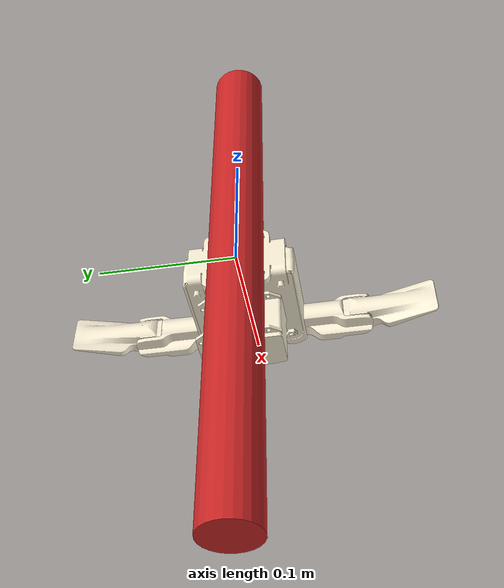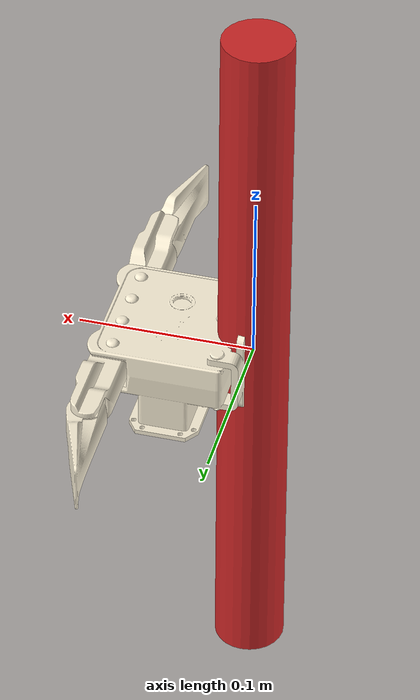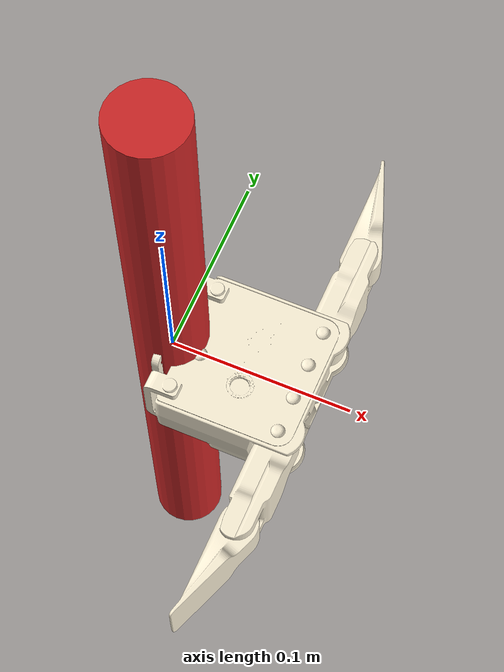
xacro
<?xml version="1.0" encoding="UTF-8"?>
<robot name="ezgripper_stand_alone" xmlns:xacro="http://www.ros.org/wiki/xacro">

<property name="ezgripper_offset_x" value="0.0"/>
<property name="ezgripper_offset_y" value="0.0"/>
<property name="ezgripper_offset_z" value="0.0"/>

<xacro:include filename="$(find ezgripper_driver)/urdf/ezgripper_dual_gen2_articulated.urdf.xacro"/>
<!-- Add the gripper -->
<ezgripper_dual prefix="left" parent_link="base_link">
<origin xyz="${ezgripper_offset_x} ${ezgripper_offset_y} ${ezgripper_offset_z}" rpy="0 0 0"/>
</ezgripper_dual>

<link name="world"/>
<joint name="fixed" type="fixed">
  <parent link="world"/>
  <child link="base_link"/>
</joint>
<link name="base_link">
   <visual>
       <geometry>
           <cylinder length="0.42" radius="0.02"/>
        </geometry>
        <origin rpy="0 0 0" xyz="0 0 0.0"/>
        <material name="red"/>
    </visual>
</link>

</robot>

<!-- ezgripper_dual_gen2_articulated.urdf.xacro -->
<robot name="ezgripper" xmlns:xacro="http://ros.org/wiki/xacro">

<!--xacro:macro name="ezgripper" params="*origin"-->

<xacro:macro name="ezgripper_dual" params="prefix parent_link *origin">

    <material name="blue_pastel">
      <color rgba="0.482 0.8 0.894 0.85"/>
    </material>

    <material name="white_clean">
      <color rgba="0.98 0.94 0.84 1."/>
    </material>

    <!-- links -->

    <link name="${prefix}_ezgripper_palm_link">
      <visual>
        <origin xyz="0 0 0" rpy="0 0 0"/>
        <geometry>
          <mesh filename="package://ezgripper_driver/meshes/ezgripper_gen2/SAKE_Palm_Dual_Gen2.stl"/>
        </geometry>
        <material name="white_clean"/>
      </visual>
      <collision>
        <origin xyz="0 0 0" rpy="0 0 0"/>
        <geometry>
          <mesh filename="package://ezgripper_driver/meshes/ezgripper_gen2/SAKE_Palm_Dual_Gen2.stl"/>
        </geometry>
      </collision>
    <inertial>
      <mass value=".3"/>
      <inertia ixx="0.01" ixy="0.0" ixz="0.0" iyy="0.01" iyz="0.0" izz="0.01"/>
    </inertial>
    </link>

    <joint name="${prefix}_ezgripper_connect" type="fixed">
        <xacro:insert_block name="origin" />
        <parent link="${parent_link}"/>
        <child link="${prefix}_ezgripper_palm_link"/>
        <axis xyz="0 0 0"/>
        <limit effort="0" lower="-1.57075" upper="0.25" velocity="3.67"/>
    </joint>

    <ezgripper_finger_L1 prefix="${prefix}" postfix="1" reflect="1" />
    <ezgripper_finger_L1 prefix="${prefix}" postfix="2" reflect="1" />

    <ezgripper_finger_L2 prefix="${prefix}" postfix="1" reflect="1" />
    <ezgripper_finger_L2 prefix="${prefix}" postfix="2" reflect="1" />

    <ezgripper_knuckle_palm_L1 prefix="${prefix}" postfix="1" reflectY="1" reflectZ="1" reflectR="1" mimic_test="false"/>
    <ezgripper_knuckle_palm_L1 prefix="${prefix}" postfix="2" reflectY="-1" reflectZ="1" reflectR="-1" mimic_test="true"/>

    <ezgripper_knuckle_L1_L2 prefix="${prefix}" postfix="1" reflectY="1" reflectZ="1" reflectR="-1" mimic_test="false"/>
    <ezgripper_knuckle_L1_L2 prefix="${prefix}" postfix="2" reflectY="-1" reflectZ="1" reflectR="1" mimic_test="true"/>

    <ezgripper_knuckle_trans prefix="${prefix}" postfix="L1_L2_1"/>

    <gazebo_knuckle_jsp prefix="${prefix}" />

</xacro:macro>

<xacro:macro name="ezgripper_finger_L1" params="prefix postfix reflect">
    <link name="${prefix}_ezgripper_finger_L1_${postfix}">
      <visual>
        <origin xyz="0 0 0" rpy="0 0 0"/>
        <geometry>
          <mesh filename="package://ezgripper_driver/meshes/ezgripper_gen2/SAKE_Finger_L1_Gen2.stl"/>
        </geometry>
        <material name="white_clean"/>
      </visual>
      <collision>
        <origin xyz="0 0 0" rpy="0 0 0"/>
        <geometry>
          <mesh filename="package://ezgripper_driver/meshes/ezgripper_gen2/SAKE_Finger_L1_Gen2.stl"/>
        </geometry>
      </collision>
      <inertial>
        <mass value=".025"/>
        <inertia ixx="0.01" ixy="0.0" ixz="0.0" iyy="0.01" iyz="0.0" izz="0.01"/>
      </inertial>
    </link>
</xacro:macro>

<xacro:macro name="ezgripper_finger_L2" params="prefix postfix reflect">
    <link name="${prefix}_ezgripper_finger_L2_${postfix}">
      <visual>
        <origin xyz="0 0 0" rpy="0 0 0"/>
        <geometry>
          <mesh filename="package://ezgripper_driver/meshes/ezgripper_gen2/SAKE_Finger_L2_Gen2.stl"/>
        </geometry>
        <material name="white_clean"/>
      </visual>
      <collision>
        <origin xyz="0 0 0" rpy="0 0 0"/>
        <geometry>
          <mesh filename="package://ezgripper_driver/meshes/ezgripper_gen2/SAKE_Finger_L2_Gen2.stl"/>
        </geometry>
      </collision>
      <inertial>
        <mass value=".025"/>
        <inertia ixx="0.01" ixy="0.0" ixz="0.0" iyy="0.01" iyz="0.0" izz="0.01"/>
      </inertial>
    </link>
</xacro:macro>

    <!-- joints -->

<xacro:macro name="ezgripper_knuckle_palm_L1" params="prefix postfix reflectY reflectZ reflectR mimic_test">
    <joint name="${prefix}_ezgripper_knuckle_palm_L1_${postfix}" type="revolute">
      <parent link="${prefix}_ezgripper_palm_link"/>
      <child link="${prefix}_ezgripper_finger_L1_${postfix}"/>
      <origin xyz="0.072569 ${reflectY*0.03} 0" rpy="${-1.5708 * reflectR} 0 ${1.57075 * reflectR}"/>
      <axis xyz="0 1 0"/>
      <limit lower="0" upper="1.94" effort="1" velocity="3.67"/>
      <xacro:if value="${mimic_test}">
           <mimic joint="${prefix}_ezgripper_knuckle_palm_L1_1"/>
      </xacro:if>
    </joint>
</xacro:macro>

<xacro:macro name="ezgripper_knuckle_L1_L2" params="prefix postfix reflectY reflectZ reflectR mimic_test">
    <joint name="${prefix}_ezgripper_knuckle_L1_L2_${postfix}" type="revolute">
      <parent link="${prefix}_ezgripper_finger_L1_${postfix}"/>
      <child link="${prefix}_ezgripper_finger_L2_${postfix}"/>
      <origin xyz="0.052 0 0" rpy="0 0 0"/>
      <!-- origin xyz="0.06 0 0" rpy="${3.14159 * reflectR} 0 0"/-->
      <axis xyz="0 1 0"/>
      <limit lower="0" upper="1.94" effort="1" velocity="3.67"/>
      <xacro:if value="${mimic_test}">
           <mimic joint="${prefix}_ezgripper_knuckle_L1_L2_1"/>
      </xacro:if>
    </joint>
</xacro:macro>

    <!-- transmissions for Gazebo -->

<xacro:macro name="ezgripper_knuckle_trans" params="prefix postfix">
   <transmission name="${prefix}_ezgripper_trans_${postfix}">
      <type>transmission_interface/SimpleTransmission</type>
      <joint name="${prefix}_ezgripper_knuckle_${postfix}">
         <hardwareInterface>hardware_interface/PositionJointInterface</hardwareInterface>
      </joint>
      <actuator name="${prefix}_ezgripper_motor${postfix}">
         <mechanicalReduction>1</mechanicalReduction>
         <hardwareInterface>hardware_interface/PositionJointInterface</hardwareInterface>
      </actuator>
   </transmission>
</xacro:macro>

<xacro:macro name="gazebo_knuckle_jsp" params="prefix">
   <gazebo>
     <plugin name="joint_state_publisher" filename="libgazebo_ros_joint_state_publisher.so">
       <jointName>${prefix}_ezgripper_knuckle_L1_L2_1,${prefix}_ezgripper_knuckle_L1_L2_2</jointName>
     </plugin>
   </gazebo>
</xacro:macro>

<gazebo>
   <plugin name="gazebo_ros_control" filename="libgazebo_ros_control.so">
   </plugin>
</gazebo>
</robot>
